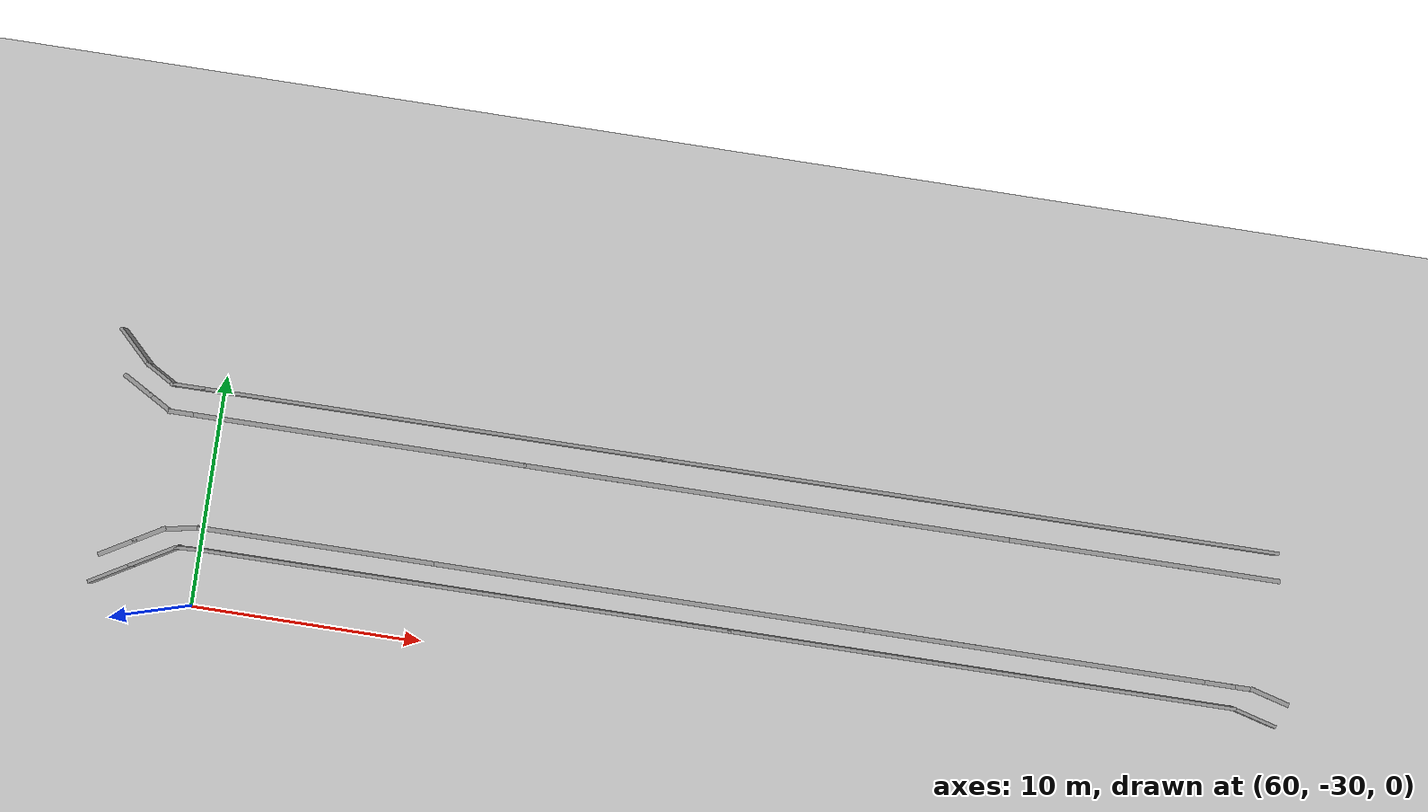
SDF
<sdf version="1.6">
 <world name="default">
  <model name="ground_plane">
   <static>1</static>
   <link name="link">
    <collision name="collision">
     <geometry><plane><normal>0 0 1</normal><size>100 100</size></plane></geometry>
     <surface>
      <contact><collide_bitmask>65535</collide_bitmask></contact>
      <friction><ode><mu>100</mu><mu2>50</mu2></ode></friction>
     </surface>
    </collision>
    <visual name="visual">
     <cast_shadows>0</cast_shadows>
     <geometry><plane><normal>0 0 1</normal><size>100 100</size></plane></geometry>
     <material>
      <script><uri>file://media/materials/scripts/gazebo.material</uri><name>Gazebo/Grey</name></script>
     </material>
    </visual>
   </link>
  </model>
  <model name="GercekDuvarSeritKoyu1">
   <link name="Wall_224">
    <pose>-26.9414 45.9039 0 0 0 -1.83269</pose>
    <inertial>
     <mass>1</mass>
     <inertia><ixx>1</ixx><ixy>0</ixy><ixz>0</ixz><iyy>1</iyy><iyz>0</iyz><izz>1</izz></inertia>
    </inertial>
    <visual name="Wall_224_Visual">
     <pose>0 0 0.375 0 -0 0</pose>
     <geometry><box><size>2 0.15 0.75</size></box></geometry>
     <material>
      <script><uri>file://media/materials/scripts/gazebo.material</uri><name>Gazebo/Grey</name></script>
      <ambient>0.5 0.5 0.5 1</ambient>
      <shader type="pixel"><normal_map>__default__</normal_map></shader>
      <diffuse>0.7 0.7 0.7 1</diffuse>
      <specular>0.01 0.01 0.01 1</specular>
      <emissive>0 0 0 1</emissive>
     </material>
     <meta><layer>0</layer></meta>
    </visual>
    <collision name="Wall_224_Collision">
     <pose>0 0 0.375 0 -0 0</pose>
     <geometry><box><size>2 0.15 0.75</size></box></geometry>
     <surface>
      <friction>
       <ode><mu>1</mu><mu2>1</mu2><fdir1>0 0 0</fdir1><slip1>0</slip1><slip2>0</slip2></ode>
       <torsional>
        <coefficient>1</coefficient>
        <patch_radius>0</patch_radius>
        <surface_radius>0</surface_radius>
        <use_patch_radius>1</use_patch_radius>
        <ode><slip>0</slip></ode>
       </torsional>
      </friction>
      <bounce><restitution_coefficient>0</restitution_coefficient><threshold>1e+06</threshold></bounce>
      <contact>
       <collide_without_contact>0</collide_without_contact>
       <collide_without_contact_bitmask>1</collide_without_contact_bitmask>
       <collide_bitmask>1</collide_bitmask>
       <ode>
        <soft_cfm>0</soft_cfm>
        <soft_erp>0.2</soft_erp>
        <kp>1e+13</kp>
        <kd>1</kd>
        <max_vel>0.01</max_vel>
        <min_depth>0</min_depth>
       </ode>
       <bullet>
        <split_impulse>1</split_impulse>
        <split_impulse_penetration_threshold>-0.01</split_impulse_penetration_threshold>
        <soft_cfm>0</soft_cfm>
        <soft_erp>0.2</soft_erp>
        <kp>1e+13</kp>
        <kd>1</kd>
       </bullet>
      </contact>
     </surface>
    </collision>
   </link>
   <link name="Wall_226">
    <pose>-27.1809 34.0854 0 0 0 -1.5708</pose>
    <inertial>
     <mass>1</mass>
     <inertia><ixx>1</ixx><ixy>0</ixy><ixz>0</ixz><iyy>1</iyy><iyz>0</iyz><izz>1</izz></inertia>
    </inertial>
    <visual name="Wall_226_Visual">
     <pose>0 0 0.375 0 -0 0</pose>
     <geometry><box><size>22 0.15 0.75</size></box></geometry>
     <material>
      <script><uri>file://media/materials/scripts/gazebo.material</uri><name>Gazebo/Grey</name></script>
      <ambient>0.5 0.5 0.5 1</ambient>
      <shader type="pixel"><normal_map>__default__</normal_map></shader>
      <diffuse>0.7 0.7 0.7 1</diffuse>
      <specular>0.01 0.01 0.01 1</specular>
      <emissive>0 0 0 1</emissive>
     </material>
     <meta><layer>0</layer></meta>
    </visual>
    <collision name="Wall_226_Collision">
     <pose>0 0 0.375 0 -0 0</pose>
     <geometry><box><size>22 0.15 0.75</size></box></geometry>
     <surface>
      <friction>
       <ode><mu>1</mu><mu2>1</mu2><fdir1>0 0 0</fdir1><slip1>0</slip1><slip2>0</slip2></ode>
       <torsional>
        <coefficient>1</coefficient>
        <patch_radius>0</patch_radius>
        <surface_radius>0</surface_radius>
        <use_patch_radius>1</use_patch_radius>
        <ode><slip>0</slip></ode>
       </torsional>
      </friction>
      <bounce><restitution_coefficient>0</restitution_coefficient><threshold>1e+06</threshold></bounce>
      <contact>
       <collide_without_contact>0</collide_without_contact>
       <collide_without_contact_bitmask>1</collide_without_contact_bitmask>
       <collide_bitmask>1</collide_bitmask>
       <ode>
        <soft_cfm>0</soft_cfm>
        <soft_erp>0.2</soft_erp>
        <kp>1e+13</kp>
        <kd>1</kd>
        <max_vel>0.01</max_vel>
        <min_depth>0</min_depth>
       </ode>
       <bullet>
        <split_impulse>1</split_impulse>
        <split_impulse_penetration_threshold>-0.01</split_impulse_penetration_threshold>
        <soft_cfm>0</soft_cfm>
        <soft_erp>0.2</soft_erp>
        <kp>1e+13</kp>
        <kd>1</kd>
       </bullet>
      </contact>
     </surface>
    </collision>
   </link>
   <link name="Wall_228">
    <pose>-27.1809 11.7354 0 0 0 -1.5708</pose>
    <inertial>
     <mass>1</mass>
     <inertia><ixx>1</ixx><ixy>0</ixy><ixz>0</ixz><iyy>1</iyy><iyz>0</iyz><izz>1</izz></inertia>
    </inertial>
    <visual name="Wall_228_Visual">
     <pose>0 0 0.375 0 -0 0</pose>
     <geometry><box><size>23 0.15 0.75</size></box></geometry>
     <material>
      <script><uri>file://media/materials/scripts/gazebo.material</uri><name>Gazebo/Grey</name></script>
      <ambient>0.5 0.5 0.5 1</ambient>
      <shader type="pixel"><normal_map>__default__</normal_map></shader>
      <diffuse>0.7 0.7 0.7 1</diffuse>
      <specular>0.01 0.01 0.01 1</specular>
      <emissive>0 0 0 1</emissive>
     </material>
     <meta><layer>0</layer></meta>
    </visual>
    <collision name="Wall_228_Collision">
     <pose>0 0 0.375 0 -0 0</pose>
     <geometry><box><size>23 0.15 0.75</size></box></geometry>
     <surface>
      <friction>
       <ode><mu>1</mu><mu2>1</mu2><fdir1>0 0 0</fdir1><slip1>0</slip1><slip2>0</slip2></ode>
       <torsional>
        <coefficient>1</coefficient>
        <patch_radius>0</patch_radius>
        <surface_radius>0</surface_radius>
        <use_patch_radius>1</use_patch_radius>
        <ode><slip>0</slip></ode>
       </torsional>
      </friction>
      <bounce><restitution_coefficient>0</restitution_coefficient><threshold>1e+06</threshold></bounce>
      <contact>
       <collide_without_contact>0</collide_without_contact>
       <collide_without_contact_bitmask>1</collide_without_contact_bitmask>
       <collide_bitmask>1</collide_bitmask>
       <ode>
        <soft_cfm>0</soft_cfm>
        <soft_erp>0.2</soft_erp>
        <kp>1e+13</kp>
        <kd>1</kd>
        <max_vel>0.01</max_vel>
        <min_depth>0</min_depth>
       </ode>
       <bullet>
        <split_impulse>1</split_impulse>
        <split_impulse_penetration_threshold>-0.01</split_impulse_penetration_threshold>
        <soft_cfm>0</soft_cfm>
        <soft_erp>0.2</soft_erp>
        <kp>1e+13</kp>
        <kd>1</kd>
       </bullet>
      </contact>
     </surface>
    </collision>
   </link>
   <link name="Wall_232">
    <pose>-25.6214 -3.39909 0 0 -0 2.09416</pose>
    <inertial>
     <mass>1</mass>
     <inertia><ixx>1</ixx><ixy>0</ixy><ixz>0</ixz><iyy>1</iyy><iyz>0</iyz><izz>1</izz></inertia>
    </inertial>
    <visual name="Wall_232_Visual">
     <pose>0 0 0.375 0 -0 0</pose>
     <geometry><box><size>2 0.15 0.75</size></box></geometry>
     <material>
      <script><uri>file://media/materials/scripts/gazebo.material</uri><name>Gazebo/Grey</name></script>
      <ambient>0.5 0.5 0.5 1</ambient>
      <shader type="pixel"><normal_map>__default__</normal_map></shader>
      <diffuse>0.7 0.7 0.7 1</diffuse>
      <specular>0.01 0.01 0.01 1</specular>
      <emissive>0 0 0 1</emissive>
     </material>
     <meta><layer>0</layer></meta>
    </visual>
    <collision name="Wall_232_Collision">
     <pose>0 0 0.375 0 -0 0</pose>
     <geometry><box><size>2 0.15 0.75</size></box></geometry>
     <surface>
      <friction>
       <ode><mu>1</mu><mu2>1</mu2><fdir1>0 0 0</fdir1><slip1>0</slip1><slip2>0</slip2></ode>
       <torsional>
        <coefficient>1</coefficient>
        <patch_radius>0</patch_radius>
        <surface_radius>0</surface_radius>
        <use_patch_radius>1</use_patch_radius>
        <ode><slip>0</slip></ode>
       </torsional>
      </friction>
      <bounce><restitution_coefficient>0</restitution_coefficient><threshold>1e+06</threshold></bounce>
      <contact>
       <collide_without_contact>0</collide_without_contact>
       <collide_without_contact_bitmask>1</collide_without_contact_bitmask>
       <collide_bitmask>1</collide_bitmask>
       <ode>
        <soft_cfm>0</soft_cfm>
        <soft_erp>0.2</soft_erp>
        <kp>1e+13</kp>
        <kd>1</kd>
        <max_vel>0.01</max_vel>
        <min_depth>0</min_depth>
       </ode>
       <bullet>
        <split_impulse>1</split_impulse>
        <split_impulse_penetration_threshold>-0.01</split_impulse_penetration_threshold>
        <soft_cfm>0</soft_cfm>
        <soft_erp>0.2</soft_erp>
        <kp>1e+13</kp>
        <kd>1</kd>
       </bullet>
      </contact>
     </surface>
    </collision>
   </link>
   <link name="Wall_233">
    <pose>-26.6089 -1.68859 0 0 -0 2.09455</pose>
    <inertial>
     <mass>1</mass>
     <inertia><ixx>1</ixx><ixy>0</ixy><ixz>0</ixz><iyy>1</iyy><iyz>0</iyz><izz>1</izz></inertia>
    </inertial>
    <visual name="Wall_233_Visual">
     <pose>0 0 0.375 0 -0 0</pose>
     <geometry><box><size>2.25 0.15 0.75</size></box></geometry>
     <material>
      <script><uri>file://media/materials/scripts/gazebo.material</uri><name>Gazebo/Grey</name></script>
      <ambient>0.5 0.5 0.5 1</ambient>
      <shader type="pixel"><normal_map>__default__</normal_map></shader>
      <diffuse>0.7 0.7 0.7 1</diffuse>
      <specular>0.01 0.01 0.01 1</specular>
      <emissive>0 0 0 1</emissive>
     </material>
     <meta><layer>0</layer></meta>
    </visual>
    <collision name="Wall_233_Collision">
     <pose>0 0 0.375 0 -0 0</pose>
     <geometry><box><size>2.25 0.15 0.75</size></box></geometry>
     <surface>
      <friction>
       <ode><mu>1</mu><mu2>1</mu2><fdir1>0 0 0</fdir1><slip1>0</slip1><slip2>0</slip2></ode>
       <torsional>
        <coefficient>1</coefficient>
        <patch_radius>0</patch_radius>
        <surface_radius>0</surface_radius>
        <use_patch_radius>1</use_patch_radius>
        <ode><slip>0</slip></ode>
       </torsional>
      </friction>
      <bounce><restitution_coefficient>0</restitution_coefficient><threshold>1e+06</threshold></bounce>
      <contact>
       <collide_without_contact>0</collide_without_contact>
       <collide_without_contact_bitmask>1</collide_without_contact_bitmask>
       <collide_bitmask>1</collide_bitmask>
       <ode>
        <soft_cfm>0</soft_cfm>
        <soft_erp>0.2</soft_erp>
        <kp>1e+13</kp>
        <kd>1</kd>
        <max_vel>0.01</max_vel>
        <min_depth>0</min_depth>
       </ode>
       <bullet>
        <split_impulse>1</split_impulse>
        <split_impulse_penetration_threshold>-0.01</split_impulse_penetration_threshold>
        <soft_cfm>0</soft_cfm>
        <soft_erp>0.2</soft_erp>
        <kp>1e+13</kp>
        <kd>1</kd>
       </bullet>
      </contact>
     </surface>
    </collision>
   </link>
   <link name="Wall_234">
    <pose>-27.1574 -0.234589 0 0 -0 1.61389</pose>
    <inertial>
     <mass>1</mass>
     <inertia><ixx>1</ixx><ixy>0</ixy><ixz>0</ixz><iyy>1</iyy><iyz>0</iyz><izz>1</izz></inertia>
    </inertial>
    <visual name="Wall_234_Visual">
     <pose>0 0 0.375 0 -0 0</pose>
     <geometry><box><size>1.24051 0.15 0.75</size></box></geometry>
     <material>
      <script><uri>file://media/materials/scripts/gazebo.material</uri><name>Gazebo/Grey</name></script>
      <ambient>0.5 0.5 0.5 1</ambient>
      <shader type="pixel"><normal_map>__default__</normal_map></shader>
      <diffuse>0.7 0.7 0.7 1</diffuse>
      <specular>0.01 0.01 0.01 1</specular>
      <emissive>0 0 0 1</emissive>
     </material>
     <meta><layer>0</layer></meta>
    </visual>
    <collision name="Wall_234_Collision">
     <pose>0 0 0.375 0 -0 0</pose>
     <geometry><box><size>1.24051 0.15 0.75</size></box></geometry>
     <surface>
      <friction>
       <ode><mu>1</mu><mu2>1</mu2><fdir1>0 0 0</fdir1><slip1>0</slip1><slip2>0</slip2></ode>
       <torsional>
        <coefficient>1</coefficient>
        <patch_radius>0</patch_radius>
        <surface_radius>0</surface_radius>
        <use_patch_radius>1</use_patch_radius>
        <ode><slip>0</slip></ode>
       </torsional>
      </friction>
      <bounce><restitution_coefficient>0</restitution_coefficient><threshold>1e+06</threshold></bounce>
      <contact>
       <collide_without_contact>0</collide_without_contact>
       <collide_without_contact_bitmask>1</collide_without_contact_bitmask>
       <collide_bitmask>1</collide_bitmask>
       <ode>
        <soft_cfm>0</soft_cfm>
        <soft_erp>0.2</soft_erp>
        <kp>1e+13</kp>
        <kd>1</kd>
        <max_vel>0.01</max_vel>
        <min_depth>0</min_depth>
       </ode>
       <bullet>
        <split_impulse>1</split_impulse>
        <split_impulse_penetration_threshold>-0.01</split_impulse_penetration_threshold>
        <soft_cfm>0</soft_cfm>
        <soft_erp>0.2</soft_erp>
        <kp>1e+13</kp>
        <kd>1</kd>
       </bullet>
      </contact>
     </surface>
    </collision>
   </link>
   <link name="Wall_308">
    <pose>-32.8739 40.3594 0 0 0 -1.5708</pose>
    <visual name="Wall_308_Visual">
     <pose>0 0 0.005 0 -0 0</pose>
     <geometry><box><size>12.0502 0.2 0.01</size></box></geometry>
     <material>
      <script><uri>file://media/materials/scripts/gazebo.material</uri><name>Gazebo/Grey</name></script>
      <ambient>1 1 1 1</ambient>
      <shader type="pixel"/>
     </material>
     <meta><layer>0</layer></meta>
    </visual>
    <collision name="Wall_308_Collision">
     <pose>0 0 0.005 0 -0 0</pose>
     <geometry><box><size>12.0502 0.2 0.01</size></box></geometry>
     <surface>
      <friction>
       <ode><mu>1</mu><mu2>1</mu2><fdir1>0 0 0</fdir1><slip1>0</slip1><slip2>0</slip2></ode>
       <torsional>
        <coefficient>1</coefficient>
        <patch_radius>0</patch_radius>
        <surface_radius>0</surface_radius>
        <use_patch_radius>1</use_patch_radius>
        <ode><slip>0</slip></ode>
       </torsional>
      </friction>
      <bounce><restitution_coefficient>0</restitution_coefficient><threshold>1e+06</threshold></bounce>
      <contact>
       <collide_without_contact>0</collide_without_contact>
       <collide_without_contact_bitmask>1</collide_without_contact_bitmask>
       <collide_bitmask>1</collide_bitmask>
       <ode>
        <soft_cfm>0</soft_cfm>
        <soft_erp>0.2</soft_erp>
        <kp>1e+13</kp>
        <kd>1</kd>
        <max_vel>0.01</max_vel>
        <min_depth>0</min_depth>
       </ode>
       <bullet>
        <split_impulse>1</split_impulse>
        <split_impulse_penetration_threshold>-0.01</split_impulse_penetration_threshold>
        <soft_cfm>0</soft_cfm>
        <soft_erp>0.2</soft_erp>
        <kp>1e+13</kp>
        <kd>1</kd>
       </bullet>
      </contact>
     </surface>
    </collision>
   </link>
   <link name="Wall_310">
    <pose>-32.8739 23.8844 0 0 0 -1.5708</pose>
    <visual name="Wall_310_Visual">
     <pose>0 0 0.005 0 -0 0</pose>
     <geometry><box><size>21.3002 0.2 0.01</size></box></geometry>
     <material>
      <script><uri>file://media/materials/scripts/gazebo.material</uri><name>Gazebo/Grey</name></script>
      <ambient>1 1 1 1</ambient>
      <shader type="pixel"/>
     </material>
     <meta><layer>0</layer></meta>
    </visual>
    <collision name="Wall_310_Collision">
     <pose>0 0 0.005 0 -0 0</pose>
     <geometry><box><size>21.3002 0.2 0.01</size></box></geometry>
     <surface>
      <friction>
       <ode><mu>1</mu><mu2>1</mu2><fdir1>0 0 0</fdir1><slip1>0</slip1><slip2>0</slip2></ode>
       <torsional>
        <coefficient>1</coefficient>
        <patch_radius>0</patch_radius>
        <surface_radius>0</surface_radius>
        <use_patch_radius>1</use_patch_radius>
        <ode><slip>0</slip></ode>
       </torsional>
      </friction>
      <bounce><restitution_coefficient>0</restitution_coefficient><threshold>1e+06</threshold></bounce>
      <contact>
       <collide_without_contact>0</collide_without_contact>
       <collide_without_contact_bitmask>1</collide_without_contact_bitmask>
       <collide_bitmask>1</collide_bitmask>
       <ode>
        <soft_cfm>0</soft_cfm>
        <soft_erp>0.2</soft_erp>
        <kp>1e+13</kp>
        <kd>1</kd>
        <max_vel>0.01</max_vel>
        <min_depth>0</min_depth>
       </ode>
       <bullet>
        <split_impulse>1</split_impulse>
        <split_impulse_penetration_threshold>-0.01</split_impulse_penetration_threshold>
        <soft_cfm>0</soft_cfm>
        <soft_erp>0.2</soft_erp>
        <kp>1e+13</kp>
        <kd>1</kd>
       </bullet>
      </contact>
     </surface>
    </collision>
   </link>
   <link name="Wall_312">
    <pose>-32.8739 6.15941 0 0 0 -1.5708</pose>
    <visual name="Wall_312_Visual">
     <pose>0 0 0.005 0 -0 0</pose>
     <geometry><box><size>14.5502 0.2 0.01</size></box></geometry>
     <material>
      <script><uri>file://media/materials/scripts/gazebo.material</uri><name>Gazebo/Grey</name></script>
      <ambient>1 1 1 1</ambient>
      <shader type="pixel"/>
     </material>
     <meta><layer>0</layer></meta>
    </visual>
    <collision name="Wall_312_Collision">
     <pose>0 0 0.005 0 -0 0</pose>
     <geometry><box><size>14.5502 0.2 0.01</size></box></geometry>
     <surface>
      <friction>
       <ode><mu>1</mu><mu2>1</mu2><fdir1>0 0 0</fdir1><slip1>0</slip1><slip2>0</slip2></ode>
       <torsional>
        <coefficient>1</coefficient>
        <patch_radius>0</patch_radius>
        <surface_radius>0</surface_radius>
        <use_patch_radius>1</use_patch_radius>
        <ode><slip>0</slip></ode>
       </torsional>
      </friction>
      <bounce><restitution_coefficient>0</restitution_coefficient><threshold>1e+06</threshold></bounce>
      <contact>
       <collide_without_contact>0</collide_without_contact>
       <collide_without_contact_bitmask>1</collide_without_contact_bitmask>
       <collide_bitmask>1</collide_bitmask>
       <ode>
        <soft_cfm>0</soft_cfm>
        <soft_erp>0.2</soft_erp>
        <kp>1e+13</kp>
        <kd>1</kd>
        <max_vel>0.01</max_vel>
        <min_depth>0</min_depth>
       </ode>
       <bullet>
        <split_impulse>1</split_impulse>
        <split_impulse_penetration_threshold>-0.01</split_impulse_penetration_threshold>
        <soft_cfm>0</soft_cfm>
        <soft_erp>0.2</soft_erp>
        <kp>1e+13</kp>
        <kd>1</kd>
       </bullet>
      </contact>
     </surface>
    </collision>
   </link>
   <link name="Wall_314">
    <pose>-32.8739 -1.56559 0 0 0 -1.5708</pose>
    <visual name="Wall_314_Visual">
     <pose>0 0 0.005 0 -0 0</pose>
     <geometry><box><size>1.30019 0.2 0.01</size></box></geometry>
     <material>
      <script><uri>file://media/materials/scripts/gazebo.material</uri><name>Gazebo/Grey</name></script>
      <ambient>1 1 1 1</ambient>
      <shader type="pixel"/>
     </material>
     <meta><layer>0</layer></meta>
    </visual>
    <collision name="Wall_314_Collision">
     <pose>0 0 0.005 0 -0 0</pose>
     <geometry><box><size>1.30019 0.2 0.01</size></box></geometry>
     <surface>
      <friction>
       <ode><mu>1</mu><mu2>1</mu2><fdir1>0 0 0</fdir1><slip1>0</slip1><slip2>0</slip2></ode>
       <torsional>
        <coefficient>1</coefficient>
        <patch_radius>0</patch_radius>
        <surface_radius>0</surface_radius>
        <use_patch_radius>1</use_patch_radius>
        <ode><slip>0</slip></ode>
       </torsional>
      </friction>
      <bounce><restitution_coefficient>0</restitution_coefficient><threshold>1e+06</threshold></bounce>
      <contact>
       <collide_without_contact>0</collide_without_contact>
       <collide_without_contact_bitmask>1</collide_without_contact_bitmask>
       <collide_bitmask>1</collide_bitmask>
       <ode>
        <soft_cfm>0</soft_cfm>
        <soft_erp>0.2</soft_erp>
        <kp>1e+13</kp>
        <kd>1</kd>
        <max_vel>0.01</max_vel>
        <min_depth>0</min_depth>
       </ode>
       <bullet>
        <split_impulse>1</split_impulse>
        <split_impulse_penetration_threshold>-0.01</split_impulse_penetration_threshold>
        <soft_cfm>0</soft_cfm>
        <soft_erp>0.2</soft_erp>
        <kp>1e+13</kp>
        <kd>1</kd>
       </bullet>
      </contact>
     </surface>
    </collision>
   </link>
   <link name="Wall_315">
    <pose>-33.1489 -2.59209 0 0 0 -2.09423</pose>
    <visual name="Wall_315_Visual">
     <pose>0 0 0.005 0 -0 0</pose>
     <geometry><box><size>1.30002 0.2 0.01</size></box></geometry>
     <material>
      <script><uri>file://media/materials/scripts/gazebo.material</uri><name>Gazebo/Grey</name></script>
      <ambient>1 1 1 1</ambient>
      <shader type="pixel"/>
     </material>
     <meta><layer>0</layer></meta>
    </visual>
    <collision name="Wall_315_Collision">
     <pose>0 0 0.005 0 -0 0</pose>
     <geometry><box><size>1.30002 0.2 0.01</size></box></geometry>
     <surface>
      <friction>
       <ode><mu>1</mu><mu2>1</mu2><fdir1>0 0 0</fdir1><slip1>0</slip1><slip2>0</slip2></ode>
       <torsional>
        <coefficient>1</coefficient>
        <patch_radius>0</patch_radius>
        <surface_radius>0</surface_radius>
        <use_patch_radius>1</use_patch_radius>
        <ode><slip>0</slip></ode>
       </torsional>
      </friction>
      <bounce><restitution_coefficient>0</restitution_coefficient><threshold>1e+06</threshold></bounce>
      <contact>
       <collide_without_contact>0</collide_without_contact>
       <collide_without_contact_bitmask>1</collide_without_contact_bitmask>
       <collide_bitmask>1</collide_bitmask>
       <ode>
        <soft_cfm>0</soft_cfm>
        <soft_erp>0.2</soft_erp>
        <kp>1e+13</kp>
        <kd>1</kd>
        <max_vel>0.01</max_vel>
        <min_depth>0</min_depth>
       </ode>
       <bullet>
        <split_impulse>1</split_impulse>
        <split_impulse_penetration_threshold>-0.01</split_impulse_penetration_threshold>
        <soft_cfm>0</soft_cfm>
        <soft_erp>0.2</soft_erp>
        <kp>1e+13</kp>
        <kd>1</kd>
       </bullet>
      </contact>
     </surface>
    </collision>
   </link>
   <link name="Wall_316">
    <pose>-33.7614 -3.65309 0 0 0 -2.09444</pose>
    <visual name="Wall_316_Visual">
     <pose>0 0 0.005 0 -0 0</pose>
     <geometry><box><size>1.5497 0.2 0.01</size></box></geometry>
     <material>
      <script><uri>file://media/materials/scripts/gazebo.material</uri><name>Gazebo/Grey</name></script>
      <ambient>1 1 1 1</ambient>
      <shader type="pixel"/>
     </material>
     <meta><layer>0</layer></meta>
    </visual>
    <collision name="Wall_316_Collision">
     <pose>0 0 0.005 0 -0 0</pose>
     <geometry><box><size>1.5497 0.2 0.01</size></box></geometry>
     <surface>
      <friction>
       <ode><mu>1</mu><mu2>1</mu2><fdir1>0 0 0</fdir1><slip1>0</slip1><slip2>0</slip2></ode>
       <torsional>
        <coefficient>1</coefficient>
        <patch_radius>0</patch_radius>
        <surface_radius>0</surface_radius>
        <use_patch_radius>1</use_patch_radius>
        <ode><slip>0</slip></ode>
       </torsional>
      </friction>
      <bounce><restitution_coefficient>0</restitution_coefficient><threshold>1e+06</threshold></bounce>
      <contact>
       <collide_without_contact>0</collide_without_contact>
       <collide_without_contact_bitmask>1</collide_without_contact_bitmask>
       <collide_bitmask>1</collide_bitmask>
       <ode>
        <soft_cfm>0</soft_cfm>
        <soft_erp>0.2</soft_erp>
        <kp>1e+13</kp>
        <kd>1</kd>
        <max_vel>0.01</max_vel>
        <min_depth>0</min_depth>
       </ode>
       <bullet>
        <split_impulse>1</split_impulse>
        <split_impulse_penetration_threshold>-0.01</split_impulse_penetration_threshold>
        <soft_cfm>0</soft_cfm>
        <soft_erp>0.2</soft_erp>
        <kp>1e+13</kp>
        <kd>1</kd>
       </bullet>
      </contact>
     </surface>
    </collision>
   </link>
   <link name="Wall_49">
    <pose>-34.0219 32.5224 0 0 0 -1.5708</pose>
    <inertial>
     <mass>1</mass>
     <inertia><ixx>1</ixx><ixy>0</ixy><ixz>0</ixz><iyy>1</iyy><iyz>0</iyz><izz>1</izz></inertia>
    </inertial>
    <visual name="Wall_49_Visual">
     <pose>0 0 0.375 0 -0 0</pose>
     <geometry><box><size>26.75 0.15 0.75</size></box></geometry>
     <material>
      <script><uri>file://media/materials/scripts/gazebo.material</uri><name>Gazebo/Grey</name></script>
      <ambient>0.5 0.5 0.5 1</ambient>
      <shader type="pixel"><normal_map>__default__</normal_map></shader>
      <diffuse>0.7 0.7 0.7 1</diffuse>
      <specular>0.01 0.01 0.01 1</specular>
      <emissive>0 0 0 1</emissive>
     </material>
     <meta><layer>0</layer></meta>
    </visual>
    <collision name="Wall_49_Collision">
     <pose>0 0 0.375 0 -0 0</pose>
     <geometry><box><size>26.75 0.15 0.75</size></box></geometry>
     <surface>
      <friction>
       <ode><mu>1</mu><mu2>1</mu2><fdir1>0 0 0</fdir1><slip1>0</slip1><slip2>0</slip2></ode>
       <torsional>
        <coefficient>1</coefficient>
        <patch_radius>0</patch_radius>
        <surface_radius>0</surface_radius>
        <use_patch_radius>1</use_patch_radius>
        <ode><slip>0</slip></ode>
       </torsional>
      </friction>
      <bounce><restitution_coefficient>0</restitution_coefficient><threshold>1e+06</threshold></bounce>
      <contact>
       <collide_without_contact>0</collide_without_contact>
       <collide_without_contact_bitmask>1</collide_without_contact_bitmask>
       <collide_bitmask>1</collide_bitmask>
       <ode>
        <soft_cfm>0</soft_cfm>
        <soft_erp>0.2</soft_erp>
        <kp>1e+13</kp>
        <kd>1</kd>
        <max_vel>0.01</max_vel>
        <min_depth>0</min_depth>
       </ode>
       <bullet>
        <split_impulse>1</split_impulse>
        <split_impulse_penetration_threshold>-0.01</split_impulse_penetration_threshold>
        <soft_cfm>0</soft_cfm>
        <soft_erp>0.2</soft_erp>
        <kp>1e+13</kp>
        <kd>1</kd>
       </bullet>
      </contact>
     </surface>
    </collision>
   </link>
   <link name="Wall_51">
    <pose>-34.0219 9.29741 0 0 0 -1.5708</pose>
    <inertial>
     <mass>1</mass>
     <inertia><ixx>1</ixx><ixy>0</ixy><ixz>0</ixz><iyy>1</iyy><iyz>0</iyz><izz>1</izz></inertia>
    </inertial>
    <visual name="Wall_51_Visual">
     <pose>0 0 0.375 0 -0 0</pose>
     <geometry><box><size>20 0.15 0.75</size></box></geometry>
     <material>
      <script><uri>file://media/materials/scripts/gazebo.material</uri><name>Gazebo/Grey</name></script>
      <ambient>0.5 0.5 0.5 1</ambient>
      <shader type="pixel"><normal_map>__default__</normal_map></shader>
      <diffuse>0.7 0.7 0.7 1</diffuse>
      <specular>0.01 0.01 0.01 1</specular>
      <emissive>0 0 0 1</emissive>
     </material>
     <meta><layer>0</layer></meta>
    </visual>
    <collision name="Wall_51_Collision">
     <pose>0 0 0.375 0 -0 0</pose>
     <geometry><box><size>20 0.15 0.75</size></box></geometry>
     <surface>
      <friction>
       <ode><mu>1</mu><mu2>1</mu2><fdir1>0 0 0</fdir1><slip1>0</slip1><slip2>0</slip2></ode>
       <torsional>
        <coefficient>1</coefficient>
        <patch_radius>0</patch_radius>
        <surface_radius>0</surface_radius>
        <use_patch_radius>1</use_patch_radius>
        <ode><slip>0</slip></ode>
       </torsional>
      </friction>
      <bounce><restitution_coefficient>0</restitution_coefficient><threshold>1e+06</threshold></bounce>
      <contact>
       <collide_without_contact>0</collide_without_contact>
       <collide_without_contact_bitmask>1</collide_without_contact_bitmask>
       <collide_bitmask>1</collide_bitmask>
       <ode>
        <soft_cfm>0</soft_cfm>
        <soft_erp>0.2</soft_erp>
        <kp>1e+13</kp>
        <kd>1</kd>
        <max_vel>0.01</max_vel>
        <min_depth>0</min_depth>
       </ode>
       <bullet>
        <split_impulse>1</split_impulse>
        <split_impulse_penetration_threshold>-0.01</split_impulse_penetration_threshold>
        <soft_cfm>0</soft_cfm>
        <soft_erp>0.2</soft_erp>
        <kp>1e+13</kp>
        <kd>1</kd>
       </bullet>
      </contact>
     </surface>
    </collision>
   </link>
   <link name="Wall_53">
    <pose>-34.0219 -1.30259 0 0 0 -1.5708</pose>
    <inertial>
     <mass>1</mass>
     <inertia><ixx>1</ixx><ixy>0</ixy><ixz>0</ixz><iyy>1</iyy><iyz>0</iyz><izz>1</izz></inertia>
    </inertial>
    <visual name="Wall_53_Visual">
     <pose>0 0 0.375 0 -0 0</pose>
     <geometry><box><size>1.5 0.15 0.75</size></box></geometry>
     <material>
      <script><uri>file://media/materials/scripts/gazebo.material</uri><name>Gazebo/Grey</name></script>
      <ambient>0.5 0.5 0.5 1</ambient>
      <shader type="pixel"><normal_map>__default__</normal_map></shader>
      <diffuse>0.7 0.7 0.7 1</diffuse>
      <specular>0.01 0.01 0.01 1</specular>
      <emissive>0 0 0 1</emissive>
     </material>
     <meta><layer>0</layer></meta>
    </visual>
    <collision name="Wall_53_Collision">
     <pose>0 0 0.375 0 -0 0</pose>
     <geometry><box><size>1.5 0.15 0.75</size></box></geometry>
     <surface>
      <friction>
       <ode><mu>1</mu><mu2>1</mu2><fdir1>0 0 0</fdir1><slip1>0</slip1><slip2>0</slip2></ode>
       <torsional>
        <coefficient>1</coefficient>
        <patch_radius>0</patch_radius>
        <surface_radius>0</surface_radius>
        <use_patch_radius>1</use_patch_radius>
        <ode><slip>0</slip></ode>
       </torsional>
      </friction>
      <bounce><restitution_coefficient>0</restitution_coefficient><threshold>1e+06</threshold></bounce>
      <contact>
       <collide_without_contact>0</collide_without_contact>
       <collide_without_contact_bitmask>1</collide_without_contact_bitmask>
       <collide_bitmask>1</collide_bitmask>
       <ode>
        <soft_cfm>0</soft_cfm>
        <soft_erp>0.2</soft_erp>
        <kp>1e+13</kp>
        <kd>1</kd>
        <max_vel>0.01</max_vel>
        <min_depth>0</min_depth>
       </ode>
       <bullet>
        <split_impulse>1</split_impulse>
        <split_impulse_penetration_threshold>-0.01</split_impulse_penetration_threshold>
        <soft_cfm>0</soft_cfm>
        <soft_erp>0.2</soft_erp>
        <kp>1e+13</kp>
        <kd>1</kd>
       </bullet>
      </contact>
     </surface>
    </collision>
   </link>
   <link name="Wall_54">
    <pose>-34.3594 -2.56209 0 0 0 -2.09444</pose>
    <inertial>
     <mass>1</mass>
     <inertia><ixx>1</ixx><ixy>0</ixy><ixz>0</ixz><iyy>1</iyy><iyz>0</iyz><izz>1</izz></inertia>
    </inertial>
    <visual name="Wall_54_Visual">
     <pose>0 0 0.375 0 -0 0</pose>
     <geometry><box><size>1.5 0.15 0.75</size></box></geometry>
     <material>
      <script><uri>file://media/materials/scripts/gazebo.material</uri><name>Gazebo/Grey</name></script>
      <ambient>0.5 0.5 0.5 1</ambient>
      <shader type="pixel"><normal_map>__default__</normal_map></shader>
      <diffuse>0.7 0.7 0.7 1</diffuse>
      <specular>0.01 0.01 0.01 1</specular>
      <emissive>0 0 0 1</emissive>
     </material>
     <meta><layer>0</layer></meta>
    </visual>
    <collision name="Wall_54_Collision">
     <pose>0 0 0.375 0 -0 0</pose>
     <geometry><box><size>1.5 0.15 0.75</size></box></geometry>
     <surface>
      <friction>
       <ode><mu>1</mu><mu2>1</mu2><fdir1>0 0 0</fdir1><slip1>0</slip1><slip2>0</slip2></ode>
       <torsional>
        <coefficient>1</coefficient>
        <patch_radius>0</patch_radius>
        <surface_radius>0</surface_radius>
        <use_patch_radius>1</use_patch_radius>
        <ode><slip>0</slip></ode>
       </torsional>
      </friction>
      <bounce><restitution_coefficient>0</restitution_coefficient><threshold>1e+06</threshold></bounce>
      <contact>
       <collide_without_contact>0</collide_without_contact>
       <collide_without_contact_bitmask>1</collide_without_contact_bitmask>
       <collide_bitmask>1</collide_bitmask>
       <ode>
        <soft_cfm>0</soft_cfm>
        <soft_erp>0.2</soft_erp>
        <kp>1e+13</kp>
        <kd>1</kd>
        <max_vel>0.01</max_vel>
        <min_depth>0</min_depth>
       </ode>
       <bullet>
        <split_impulse>1</split_impulse>
        <split_impulse_penetration_threshold>-0.01</split_impulse_penetration_threshold>
        <soft_cfm>0</soft_cfm>
        <soft_erp>0.2</soft_erp>
        <kp>1e+13</kp>
        <kd>1</kd>
       </bullet>
      </contact>
     </surface>
    </collision>
   </link>
   <link name="Wall_55">
    <pose>-35.3509 -3.80059 0 0 0 -2.35619</pose>
    <inertial>
     <mass>1</mass>
     <inertia><ixx>1</ixx><ixy>0</ixy><ixz>0</ixz><iyy>1</iyy><iyz>0</iyz><izz>1</izz></inertia>
    </inertial>
    <visual name="Wall_55_Visual">
     <pose>0 0 0.375 0 -0 0</pose>
     <geometry><box><size>2 0.15 0.75</size></box></geometry>
     <material>
      <script><uri>file://media/materials/scripts/gazebo.material</uri><name>Gazebo/Grey</name></script>
      <ambient>0.5 0.5 0.5 1</ambient>
      <shader type="pixel"><normal_map>__default__</normal_map></shader>
      <diffuse>0.7 0.7 0.7 1</diffuse>
      <specular>0.01 0.01 0.01 1</specular>
      <emissive>0 0 0 1</emissive>
     </material>
     <meta><layer>0</layer></meta>
    </visual>
    <collision name="Wall_55_Collision">
     <pose>0 0 0.375 0 -0 0</pose>
     <geometry><box><size>2 0.15 0.75</size></box></geometry>
     <surface>
      <friction>
       <ode><mu>1</mu><mu2>1</mu2><fdir1>0 0 0</fdir1><slip1>0</slip1><slip2>0</slip2></ode>
       <torsional>
        <coefficient>1</coefficient>
        <patch_radius>0</patch_radius>
        <surface_radius>0</surface_radius>
        <use_patch_radius>1</use_patch_radius>
        <ode><slip>0</slip></ode>
       </torsional>
      </friction>
      <bounce><restitution_coefficient>0</restitution_coefficient><threshold>1e+06</threshold></bounce>
      <contact>
       <collide_without_contact>0</collide_without_contact>
       <collide_without_contact_bitmask>1</collide_without_contact_bitmask>
       <collide_bitmask>1</collide_bitmask>
       <ode>
        <soft_cfm>0</soft_cfm>
        <soft_erp>0.2</soft_erp>
        <kp>1e+13</kp>
        <kd>1</kd>
        <max_vel>0.01</max_vel>
        <min_depth>0</min_depth>
       </ode>
       <bullet>
        <split_impulse>1</split_impulse>
        <split_impulse_penetration_threshold>-0.01</split_impulse_penetration_threshold>
        <soft_cfm>0</soft_cfm>
        <soft_erp>0.2</soft_erp>
        <kp>1e+13</kp>
        <kd>1</kd>
       </bullet>
      </contact>
     </surface>
    </collision>
   </link>
   <link name="Wall_568">
    <pose>-27.8814 46.6774 0 0 0 -1.83305</pose>
    <visual name="Wall_568_Visual">
     <pose>0 0 0.005 0 -0 0</pose>
     <geometry><box><size>1.80057 0.2 0.01</size></box></geometry>
     <material>
      <script><uri>file://media/materials/scripts/gazebo.material</uri><name>Gazebo/Grey</name></script>
      <ambient>1 1 1 1</ambient>
      <shader type="pixel"/>
     </material>
     <meta><layer>0</layer></meta>
    </visual>
    <collision name="Wall_568_Collision">
     <pose>0 0 0.005 0 -0 0</pose>
     <geometry><box><size>1.80057 0.2 0.01</size></box></geometry>
     <surface>
      <friction>
       <ode><mu>1</mu><mu2>1</mu2><fdir1>0 0 0</fdir1><slip1>0</slip1><slip2>0</slip2></ode>
       <torsional>
        <coefficient>1</coefficient>
        <patch_radius>0</patch_radius>
        <surface_radius>0</surface_radius>
        <use_patch_radius>1</use_patch_radius>
        <ode><slip>0</slip></ode>
       </torsional>
      </friction>
      <bounce><restitution_coefficient>0</restitution_coefficient><threshold>1e+06</threshold></bounce>
      <contact>
       <collide_without_contact>0</collide_without_contact>
       <collide_without_contact_bitmask>1</collide_without_contact_bitmask>
       <collide_bitmask>1</collide_bitmask>
       <ode>
        <soft_cfm>0</soft_cfm>
        <soft_erp>0.2</soft_erp>
        <kp>1e+13</kp>
        <kd>1</kd>
        <max_vel>0.01</max_vel>
        <min_depth>0</min_depth>
       </ode>
       <bullet>
        <split_impulse>1</split_impulse>
        <split_impulse_penetration_threshold>-0.01</split_impulse_penetration_threshold>
        <soft_cfm>0</soft_cfm>
        <soft_erp>0.2</soft_erp>
        <kp>1e+13</kp>
        <kd>1</kd>
       </bullet>
      </contact>
     </surface>
    </collision>
   </link>
   <link name="Wall_572">
    <pose>-28.0889 45.4794 0 0 0 -1.5708</pose>
    <visual name="Wall_572_Visual">
     <pose>0 0 0.005 0 -0 0</pose>
     <geometry><box><size>1.04995 0.2 0.01</size></box></geometry>
     <material>
      <script><uri>file://media/materials/scripts/gazebo.material</uri><name>Gazebo/Grey</name></script>
      <ambient>1 1 1 1</ambient>
      <shader type="pixel"/>
     </material>
     <meta><layer>0</layer></meta>
    </visual>
    <collision name="Wall_572_Collision">
     <pose>0 0 0.005 0 -0 0</pose>
     <geometry><box><size>1.04995 0.2 0.01</size></box></geometry>
     <surface>
      <friction>
       <ode><mu>1</mu><mu2>1</mu2><fdir1>0 0 0</fdir1><slip1>0</slip1><slip2>0</slip2></ode>
       <torsional>
        <coefficient>1</coefficient>
        <patch_radius>0</patch_radius>
        <surface_radius>0</surface_radius>
        <use_patch_radius>1</use_patch_radius>
        <ode><slip>0</slip></ode>
       </torsional>
      </friction>
      <bounce><restitution_coefficient>0</restitution_coefficient><threshold>1e+06</threshold></bounce>
      <contact>
       <collide_without_contact>0</collide_without_contact>
       <collide_without_contact_bitmask>1</collide_without_contact_bitmask>
       <collide_bitmask>1</collide_bitmask>
       <ode>
        <soft_cfm>0</soft_cfm>
        <soft_erp>0.2</soft_erp>
        <kp>1e+13</kp>
        <kd>1</kd>
        <max_vel>0.01</max_vel>
        <min_depth>0</min_depth>
       </ode>
       <bullet>
        <split_impulse>1</split_impulse>
        <split_impulse_penetration_threshold>-0.01</split_impulse_penetration_threshold>
        <soft_cfm>0</soft_cfm>
        <soft_erp>0.2</soft_erp>
        <kp>1e+13</kp>
        <kd>1</kd>
       </bullet>
      </contact>
     </surface>
    </collision>
   </link>
   <link name="Wall_573">
    <pose>-28.0889 44.3794 0 0 0 -1.5708</pose>
    <visual name="Wall_573_Visual">
     <pose>0 0 0.005 0 -0 0</pose>
     <geometry><box><size>1.54995 0.2 0.01</size></box></geometry>
     <material>
      <script><uri>file://media/materials/scripts/gazebo.material</uri><name>Gazebo/Grey</name></script>
      <ambient>1 1 1 1</ambient>
      <shader type="pixel"/>
     </material>
     <meta><layer>0</layer></meta>
    </visual>
    <collision name="Wall_573_Collision">
     <pose>0 0 0.005 0 -0 0</pose>
     <geometry><box><size>1.54995 0.2 0.01</size></box></geometry>
     <surface>
      <friction>
       <ode><mu>1</mu><mu2>1</mu2><fdir1>0 0 0</fdir1><slip1>0</slip1><slip2>0</slip2></ode>
       <torsional>
        <coefficient>1</coefficient>
        <patch_radius>0</patch_radius>
        <surface_radius>0</surface_radius>
        <use_patch_radius>1</use_patch_radius>
        <ode><slip>0</slip></ode>
       </torsional>
      </friction>
      <bounce><restitution_coefficient>0</restitution_coefficient><threshold>1e+06</threshold></bounce>
      <contact>
       <collide_without_contact>0</collide_without_contact>
       <collide_without_contact_bitmask>1</collide_without_contact_bitmask>
       <collide_bitmask>1</collide_bitmask>
       <ode>
        <soft_cfm>0</soft_cfm>
        <soft_erp>0.2</soft_erp>
        <kp>1e+13</kp>
        <kd>1</kd>
        <max_vel>0.01</max_vel>
        <min_depth>0</min_depth>
       </ode>
       <bullet>
        <split_impulse>1</split_impulse>
        <split_impulse_penetration_threshold>-0.01</split_impulse_penetration_threshold>
        <soft_cfm>0</soft_cfm>
        <soft_erp>0.2</soft_erp>
        <kp>1e+13</kp>
        <kd>1</kd>
       </bullet>
      </contact>
     </surface>
    </collision>
   </link>
   <link name="Wall_575">
    <pose>-28.0889 36.2794 0 0 0 -1.5708</pose>
    <visual name="Wall_575_Visual">
     <pose>0 0 0.005 0 -0 0</pose>
     <geometry><box><size>15.0499 0.2 0.01</size></box></geometry>
     <material>
      <script><uri>file://media/materials/scripts/gazebo.material</uri><name>Gazebo/Grey</name></script>
      <ambient>1 1 1 1</ambient>
      <shader type="pixel"/>
     </material>
     <meta><layer>0</layer></meta>
    </visual>
    <collision name="Wall_575_Collision">
     <pose>0 0 0.005 0 -0 0</pose>
     <geometry><box><size>15.0499 0.2 0.01</size></box></geometry>
     <surface>
      <friction>
       <ode><mu>1</mu><mu2>1</mu2><fdir1>0 0 0</fdir1><slip1>0</slip1><slip2>0</slip2></ode>
       <torsional>
        <coefficient>1</coefficient>
        <patch_radius>0</patch_radius>
        <surface_radius>0</surface_radius>
        <use_patch_radius>1</use_patch_radius>
        <ode><slip>0</slip></ode>
       </torsional>
      </friction>
      <bounce><restitution_coefficient>0</restitution_coefficient><threshold>1e+06</threshold></bounce>
      <contact>
       <collide_without_contact>0</collide_without_contact>
       <collide_without_contact_bitmask>1</collide_without_contact_bitmask>
       <collide_bitmask>1</collide_bitmask>
       <ode>
        <soft_cfm>0</soft_cfm>
        <soft_erp>0.2</soft_erp>
        <kp>1e+13</kp>
        <kd>1</kd>
        <max_vel>0.01</max_vel>
        <min_depth>0</min_depth>
       </ode>
       <bullet>
        <split_impulse>1</split_impulse>
        <split_impulse_penetration_threshold>-0.01</split_impulse_penetration_threshold>
        <soft_cfm>0</soft_cfm>
        <soft_erp>0.2</soft_erp>
        <kp>1e+13</kp>
        <kd>1</kd>
       </bullet>
      </contact>
     </surface>
    </collision>
   </link>
   <link name="Wall_577">
    <pose>-28.0889 19.5544 0 0 0 -1.5708</pose>
    <visual name="Wall_577_Visual">
     <pose>0 0 0.005 0 -0 0</pose>
     <geometry><box><size>18.7999 0.2 0.01</size></box></geometry>
     <material>
      <script><uri>file://media/materials/scripts/gazebo.material</uri><name>Gazebo/Grey</name></script>
      <ambient>1 1 1 1</ambient>
      <shader type="pixel"/>
     </material>
     <meta><layer>0</layer></meta>
    </visual>
    <collision name="Wall_577_Collision">
     <pose>0 0 0.005 0 -0 0</pose>
     <geometry><box><size>18.7999 0.2 0.01</size></box></geometry>
     <surface>
      <friction>
       <ode><mu>1</mu><mu2>1</mu2><fdir1>0 0 0</fdir1><slip1>0</slip1><slip2>0</slip2></ode>
       <torsional>
        <coefficient>1</coefficient>
        <patch_radius>0</patch_radius>
        <surface_radius>0</surface_radius>
        <use_patch_radius>1</use_patch_radius>
        <ode><slip>0</slip></ode>
       </torsional>
      </friction>
      <bounce><restitution_coefficient>0</restitution_coefficient><threshold>1e+06</threshold></bounce>
      <contact>
       <collide_without_contact>0</collide_without_contact>
       <collide_without_contact_bitmask>1</collide_without_contact_bitmask>
       <collide_bitmask>1</collide_bitmask>
       <ode>
        <soft_cfm>0</soft_cfm>
        <soft_erp>0.2</soft_erp>
        <kp>1e+13</kp>
        <kd>1</kd>
        <max_vel>0.01</max_vel>
        <min_depth>0</min_depth>
       </ode>
       <bullet>
        <split_impulse>1</split_impulse>
        <split_impulse_penetration_threshold>-0.01</split_impulse_penetration_threshold>
        <soft_cfm>0</soft_cfm>
        <soft_erp>0.2</soft_erp>
        <kp>1e+13</kp>
        <kd>1</kd>
       </bullet>
      </contact>
     </surface>
    </collision>
   </link>
   <link name="Wall_579">
    <pose>-28.0889 5.07941 0 0 0 -1.5708</pose>
    <visual name="Wall_579_Visual">
     <pose>0 0 0.005 0 -0 0</pose>
     <geometry><box><size>10.5499 0.2 0.01</size></box></geometry>
     <material>
      <script><uri>file://media/materials/scripts/gazebo.material</uri><name>Gazebo/Grey</name></script>
      <ambient>1 1 1 1</ambient>
      <shader type="pixel"/>
     </material>
     <meta><layer>0</layer></meta>
    </visual>
    <collision name="Wall_579_Collision">
     <pose>0 0 0.005 0 -0 0</pose>
     <geometry><box><size>10.5499 0.2 0.01</size></box></geometry>
     <surface>
      <friction>
       <ode><mu>1</mu><mu2>1</mu2><fdir1>0 0 0</fdir1><slip1>0</slip1><slip2>0</slip2></ode>
       <torsional>
        <coefficient>1</coefficient>
        <patch_radius>0</patch_radius>
        <surface_radius>0</surface_radius>
        <use_patch_radius>1</use_patch_radius>
        <ode><slip>0</slip></ode>
       </torsional>
      </friction>
      <bounce><restitution_coefficient>0</restitution_coefficient><threshold>1e+06</threshold></bounce>
      <contact>
       <collide_without_contact>0</collide_without_contact>
       <collide_without_contact_bitmask>1</collide_without_contact_bitmask>
       <collide_bitmask>1</collide_bitmask>
       <ode>
        <soft_cfm>0</soft_cfm>
        <soft_erp>0.2</soft_erp>
        <kp>1e+13</kp>
        <kd>1</kd>
        <max_vel>0.01</max_vel>
        <min_depth>0</min_depth>
       </ode>
       <bullet>
        <split_impulse>1</split_impulse>
        <split_impulse_penetration_threshold>-0.01</split_impulse_penetration_threshold>
        <soft_cfm>0</soft_cfm>
        <soft_erp>0.2</soft_erp>
        <kp>1e+13</kp>
        <kd>1</kd>
       </bullet>
      </contact>
     </surface>
    </collision>
   </link>
   <link name="Wall_585">
    <pose>-26.7279 -3.47959 0 0 -0 2.09428</pose>
    <visual name="Wall_585_Visual">
     <pose>0 0 0.005 0 -0 0</pose>
     <geometry><box><size>1.80031 0.2 0.01</size></box></geometry>
     <material>
      <script><uri>file://media/materials/scripts/gazebo.material</uri><name>Gazebo/Grey</name></script>
      <ambient>1 1 1 1</ambient>
      <shader type="pixel"/>
     </material>
     <meta><layer>0</layer></meta>
    </visual>
    <collision name="Wall_585_Collision">
     <pose>0 0 0.005 0 -0 0</pose>
     <geometry><box><size>1.80031 0.2 0.01</size></box></geometry>
     <surface>
      <friction>
       <ode><mu>1</mu><mu2>1</mu2><fdir1>0 0 0</fdir1><slip1>0</slip1><slip2>0</slip2></ode>
       <torsional>
        <coefficient>1</coefficient>
        <patch_radius>0</patch_radius>
        <surface_radius>0</surface_radius>
        <use_patch_radius>1</use_patch_radius>
        <ode><slip>0</slip></ode>
       </torsional>
      </friction>
      <bounce><restitution_coefficient>0</restitution_coefficient><threshold>1e+06</threshold></bounce>
      <contact>
       <collide_without_contact>0</collide_without_contact>
       <collide_without_contact_bitmask>1</collide_without_contact_bitmask>
       <collide_bitmask>1</collide_bitmask>
       <ode>
        <soft_cfm>0</soft_cfm>
        <soft_erp>0.2</soft_erp>
        <kp>1e+13</kp>
        <kd>1</kd>
        <max_vel>0.01</max_vel>
        <min_depth>0</min_depth>
       </ode>
       <bullet>
        <split_impulse>1</split_impulse>
        <split_impulse_penetration_threshold>-0.01</split_impulse_penetration_threshold>
        <soft_cfm>0</soft_cfm>
        <soft_erp>0.2</soft_erp>
        <kp>1e+13</kp>
        <kd>1</kd>
       </bullet>
      </contact>
     </surface>
    </collision>
   </link>
   <link name="Wall_586">
    <pose>-27.4654 -2.20209 0 0 -0 2.09444</pose>
    <visual name="Wall_586_Visual">
     <pose>0 0 0.005 0 -0 0</pose>
     <geometry><box><size>1.54988 0.2 0.01</size></box></geometry>
     <material>
      <script><uri>file://media/materials/scripts/gazebo.material</uri><name>Gazebo/Grey</name></script>
      <ambient>1 1 1 1</ambient>
      <shader type="pixel"/>
     </material>
     <meta><layer>0</layer></meta>
    </visual>
    <collision name="Wall_586_Collision">
     <pose>0 0 0.005 0 -0 0</pose>
     <geometry><box><size>1.54988 0.2 0.01</size></box></geometry>
     <surface>
      <friction>
       <ode><mu>1</mu><mu2>1</mu2><fdir1>0 0 0</fdir1><slip1>0</slip1><slip2>0</slip2></ode>
       <torsional>
        <coefficient>1</coefficient>
        <patch_radius>0</patch_radius>
        <surface_radius>0</surface_radius>
        <use_patch_radius>1</use_patch_radius>
        <ode><slip>0</slip></ode>
       </torsional>
      </friction>
      <bounce><restitution_coefficient>0</restitution_coefficient><threshold>1e+06</threshold></bounce>
      <contact>
       <collide_without_contact>0</collide_without_contact>
       <collide_without_contact_bitmask>1</collide_without_contact_bitmask>
       <collide_bitmask>1</collide_bitmask>
       <ode>
        <soft_cfm>0</soft_cfm>
        <soft_erp>0.2</soft_erp>
        <kp>1e+13</kp>
        <kd>1</kd>
        <max_vel>0.01</max_vel>
        <min_depth>0</min_depth>
       </ode>
       <bullet>
        <split_impulse>1</split_impulse>
        <split_impulse_penetration_threshold>-0.01</split_impulse_penetration_threshold>
        <soft_cfm>0</soft_cfm>
        <soft_erp>0.2</soft_erp>
        <kp>1e+13</kp>
        <kd>1</kd>
       </bullet>
      </contact>
     </surface>
    </collision>
   </link>
   <link name="Wall_587">
    <pose>-27.9459 -0.85659 0 0 -0 1.75654</pose>
    <visual name="Wall_587_Visual">
     <pose>0 0 0.005 0 -0 0</pose>
     <geometry><box><size>1.74864 0.2 0.01</size></box></geometry>
     <material>
      <script><uri>file://media/materials/scripts/gazebo.material</uri><name>Gazebo/Grey</name></script>
      <ambient>1 1 1 1</ambient>
      <shader type="pixel"/>
     </material>
     <meta><layer>0</layer></meta>
    </visual>
    <collision name="Wall_587_Collision">
     <pose>0 0 0.005 0 -0 0</pose>
     <geometry><box><size>1.74864 0.2 0.01</size></box></geometry>
     <surface>
      <friction>
       <ode><mu>1</mu><mu2>1</mu2><fdir1>0 0 0</fdir1><slip1>0</slip1><slip2>0</slip2></ode>
       <torsional>
        <coefficient>1</coefficient>
        <patch_radius>0</patch_radius>
        <surface_radius>0</surface_radius>
        <use_patch_radius>1</use_patch_radius>
        <ode><slip>0</slip></ode>
       </torsional>
      </friction>
      <bounce><restitution_coefficient>0</restitution_coefficient><threshold>1e+06</threshold></bounce>
      <contact>
       <collide_without_contact>0</collide_without_contact>
       <collide_without_contact_bitmask>1</collide_without_contact_bitmask>
       <collide_bitmask>1</collide_bitmask>
       <ode>
        <soft_cfm>0</soft_cfm>
        <soft_erp>0.2</soft_erp>
        <kp>1e+13</kp>
        <kd>1</kd>
        <max_vel>0.01</max_vel>
        <min_depth>0</min_depth>
       </ode>
       <bullet>
        <split_impulse>1</split_impulse>
        <split_impulse_penetration_threshold>-0.01</split_impulse_penetration_threshold>
        <soft_cfm>0</soft_cfm>
        <soft_erp>0.2</soft_erp>
        <kp>1e+13</kp>
        <kd>1</kd>
       </bullet>
      </contact>
     </surface>
    </collision>
   </link>
   <static>1</static>
   <pose>59.9324 -54.7034 -0 0 0 -1.5695</pose>
  </model>
 </world>
</sdf>
